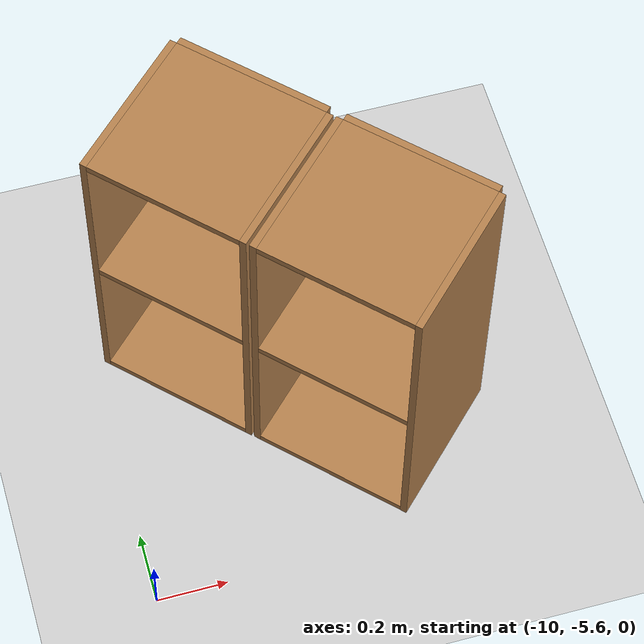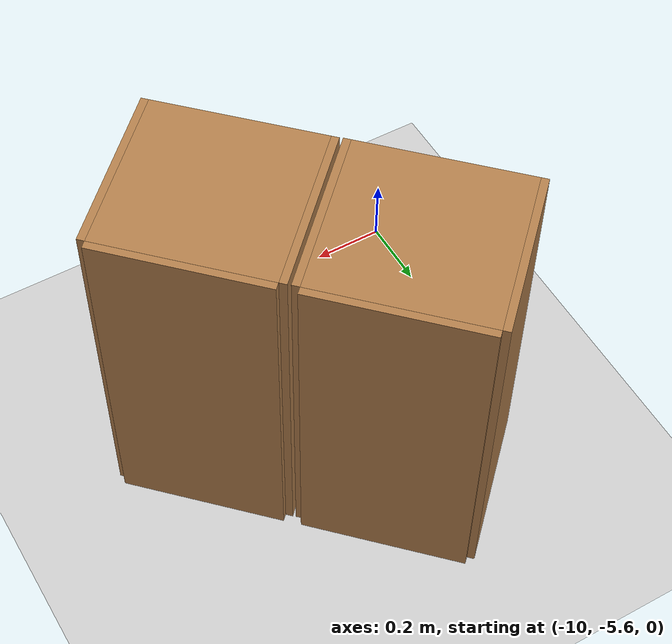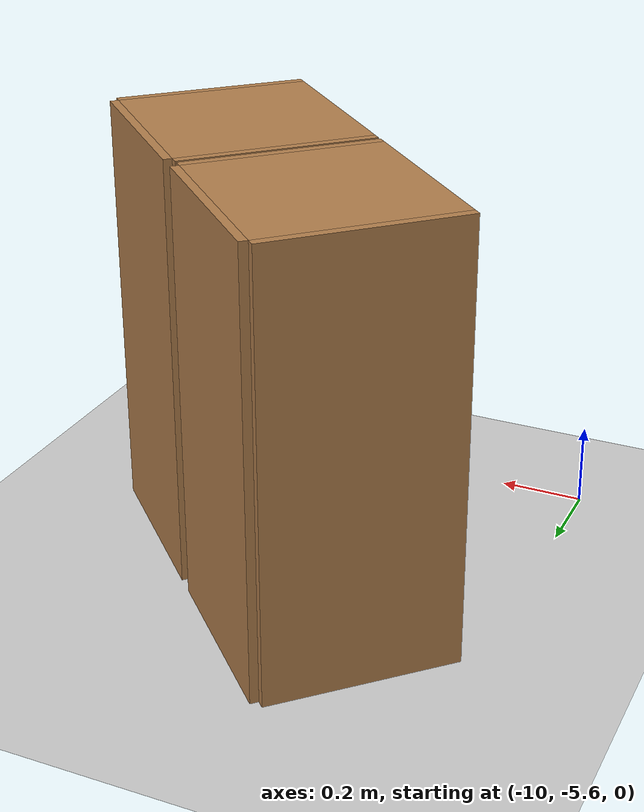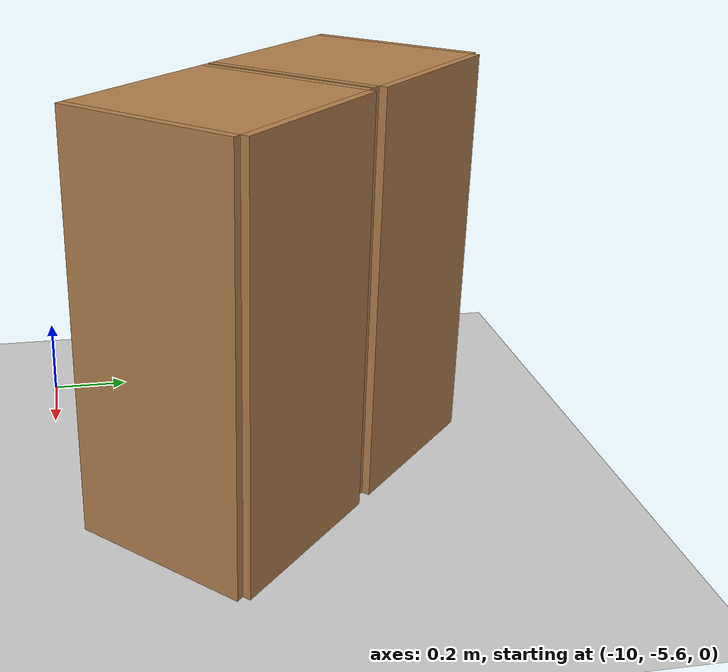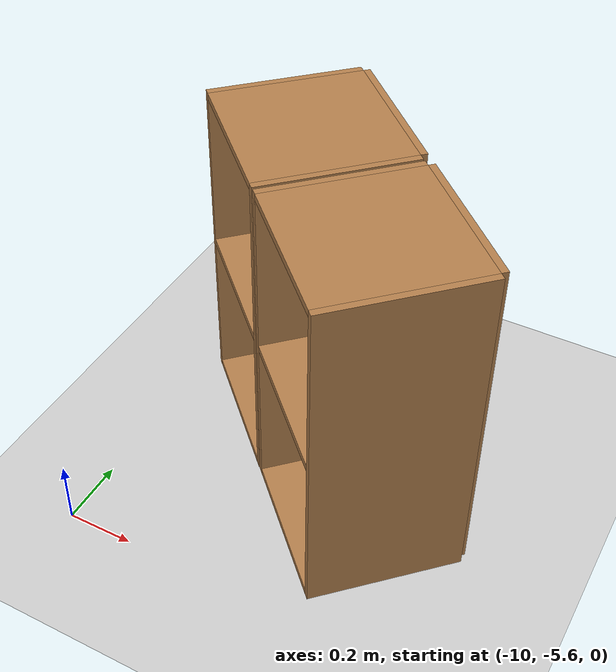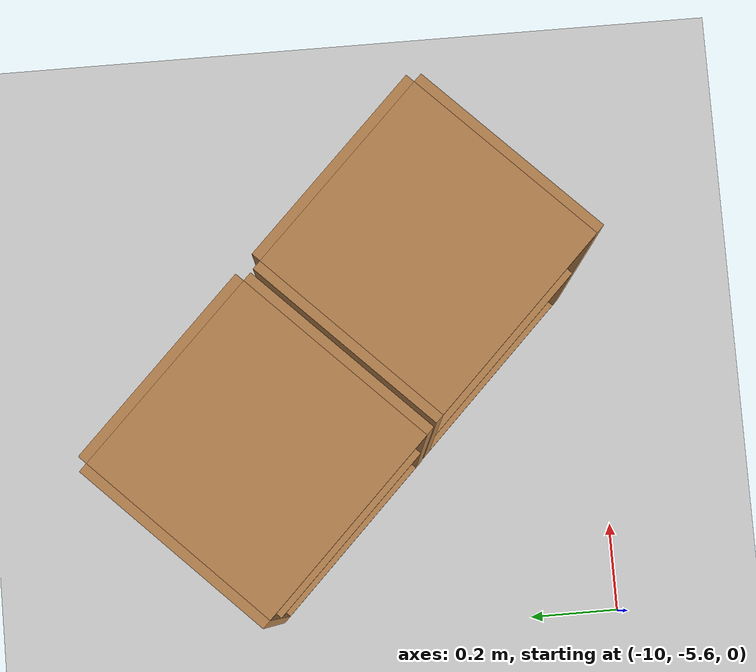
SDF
<sdf version="1.6">
 <world name="default">
  <model name="ground_plane">
   <static>1</static>
   <link name="link">
    <collision name="collision">
     <geometry><plane><normal>0 0 1</normal><size>100 100</size></plane></geometry>
     <surface><friction><ode><mu>100</mu><mu2>50</mu2></ode></friction></surface>
    </collision>
    <visual name="visual">
     <cast_shadows>0</cast_shadows>
     <geometry><plane><normal>0 0 1</normal><size>100 100</size></plane></geometry>
     <material>
      <script><uri>file://media/materials/scripts/gazebo.material</uri><name>Gazebo/Grey</name></script>
     </material>
    </visual>
   </link>
  </model>
  <model name="cabinet">
   <link name="cabinet_bottom_plate">
    <inertial>
     <pose>0 0 -1 0 -0 0</pose>
     <inertia><ixx>2.05</ixx><ixy>0</ixy><ixz>0</ixz><iyy>2.05</iyy><iyz>0</iyz><izz>2.05</izz></inertia>
     <mass>25</mass>
    </inertial>
    <pose>0.000907 -0.371908 0 0 -0 0.787259</pose>
    <visual name="cabinet_bottom_plate_geom_visual">
     <pose>0 0 0.01 0 -0 0</pose>
     <geometry><box><size>0.45 0.45 0.02</size></box></geometry>
     <material>
      <script><uri>file://media/materials/scripts/gazebo.material</uri><name>Gazebo/Wood</name></script>
      <shader type="vertex"><normal_map>__default__</normal_map></shader>
      <ambient>1 1 1 1</ambient>
      <diffuse>1 1 1 1</diffuse>
      <specular>0.2 0.2 0.2 1</specular>
      <emissive>0 0 0 1</emissive>
     </material>
    </visual>
    <visual name="cabinet_bottom_plate_geom_cabinet_back_plate_visual">
     <pose>0.235 0 0.51 0 -0 0</pose>
     <geometry><box><size>0.02 0.45 1.02</size></box></geometry>
     <material>
      <script><uri>file://media/materials/scripts/gazebo.material</uri><name>Gazebo/Wood</name></script>
      <shader type="vertex"><normal_map>__default__</normal_map></shader>
      <ambient>1 1 1 1</ambient>
      <diffuse>1 1 1 1</diffuse>
      <specular>0.2 0.2 0.2 1</specular>
      <emissive>0 0 0 1</emissive>
     </material>
    </visual>
    <visual name="cabinet_bottom_plate_geom_cabinet_left_plate_visual">
     <pose>0 0.235 0.51 0 -0 0</pose>
     <geometry><box><size>0.45 0.02 1.02</size></box></geometry>
     <material>
      <script><uri>file://media/materials/scripts/gazebo.material</uri><name>Gazebo/Wood</name></script>
      <shader type="vertex"><normal_map>__default__</normal_map></shader>
      <ambient>1 1 1 1</ambient>
      <diffuse>1 1 1 1</diffuse>
      <specular>0.2 0.2 0.2 1</specular>
      <emissive>0 0 0 1</emissive>
     </material>
    </visual>
    <visual name="cabinet_bottom_plate_geom_cabinet_middle_plate_visual">
     <pose>0 0 0.51 0 -0 0</pose>
     <geometry><box><size>0.45 0.45 0.02</size></box></geometry>
     <material>
      <script><uri>file://media/materials/scripts/gazebo.material</uri><name>Gazebo/Wood</name></script>
      <shader type="vertex"><normal_map>__default__</normal_map></shader>
      <ambient>1 1 1 1</ambient>
      <diffuse>1 1 1 1</diffuse>
      <specular>0.2 0.2 0.2 1</specular>
      <emissive>0 0 0 1</emissive>
     </material>
    </visual>
    <visual name="cabinet_bottom_plate_geom_cabinet_top_plate_visual">
     <pose>0 0 1.01 0 -0 0</pose>
     <geometry><box><size>0.45 0.45 0.02</size></box></geometry>
     <material>
      <script><uri>file://media/materials/scripts/gazebo.material</uri><name>Gazebo/Wood</name></script>
      <shader type="vertex"><normal_map>__default__</normal_map></shader>
      <ambient>1 1 1 1</ambient>
      <diffuse>1 1 1 1</diffuse>
      <specular>0.2 0.2 0.2 1</specular>
      <emissive>0 0 0 1</emissive>
     </material>
    </visual>
    <visual name="cabinet_bottom_plate_geom_cabinet_right_plate_visual">
     <pose>0 -0.235 0.51 0 -0 0</pose>
     <geometry><box><size>0.45 0.02 1.02</size></box></geometry>
     <material>
      <script><uri>file://media/materials/scripts/gazebo.material</uri><name>Gazebo/Wood</name></script>
      <shader type="vertex"><normal_map>__default__</normal_map></shader>
      <ambient>1 1 1 1</ambient>
      <diffuse>1 1 1 1</diffuse>
      <specular>0.2 0.2 0.2 1</specular>
      <emissive>0 0 0 1</emissive>
     </material>
    </visual>
    <collision name="cabinet_bottom_plate_geom">
     <pose>0 0 0.01 0 -0 0</pose>
     <geometry><box><size>0.45 0.45 0.02</size></box></geometry>
     <surface>
      <friction>
       <ode><mu>1</mu><mu2>1</mu2><fdir1>0 0 0</fdir1><slip1>0</slip1><slip2>0</slip2></ode>
       <torsional>
        <coefficient>1</coefficient>
        <patch_radius>0</patch_radius>
        <surface_radius>0</surface_radius>
        <use_patch_radius>1</use_patch_radius>
        <ode><slip>0</slip></ode>
       </torsional>
      </friction>
      <bounce><restitution_coefficient>0</restitution_coefficient><threshold>1e+06</threshold></bounce>
      <contact>
       <collide_without_contact>0</collide_without_contact>
       <collide_without_contact_bitmask>1</collide_without_contact_bitmask>
       <collide_bitmask>1</collide_bitmask>
       <ode>
        <soft_cfm>0</soft_cfm>
        <soft_erp>0.2</soft_erp>
        <kp>1e+13</kp>
        <kd>1</kd>
        <max_vel>0.01</max_vel>
        <min_depth>0</min_depth>
       </ode>
       <bullet>
        <split_impulse>1</split_impulse>
        <split_impulse_penetration_threshold>-0.01</split_impulse_penetration_threshold>
        <soft_cfm>0</soft_cfm>
        <soft_erp>0.2</soft_erp>
        <kp>1e+13</kp>
        <kd>1</kd>
       </bullet>
      </contact>
     </surface>
    </collision>
    <collision name="cabinet_bottom_plate_geom_cabinet_back_plate">
     <pose>0.235 0 0.51 0 -0 0</pose>
     <geometry><box><size>0.02 0.45 1.02</size></box></geometry>
     <surface>
      <friction>
       <ode><mu>1</mu><mu2>1</mu2><fdir1>0 0 0</fdir1><slip1>0</slip1><slip2>0</slip2></ode>
       <torsional>
        <coefficient>1</coefficient>
        <patch_radius>0</patch_radius>
        <surface_radius>0</surface_radius>
        <use_patch_radius>1</use_patch_radius>
        <ode><slip>0</slip></ode>
       </torsional>
      </friction>
      <bounce><restitution_coefficient>0</restitution_coefficient><threshold>1e+06</threshold></bounce>
      <contact>
       <collide_without_contact>0</collide_without_contact>
       <collide_without_contact_bitmask>1</collide_without_contact_bitmask>
       <collide_bitmask>1</collide_bitmask>
       <ode>
        <soft_cfm>0</soft_cfm>
        <soft_erp>0.2</soft_erp>
        <kp>1e+13</kp>
        <kd>1</kd>
        <max_vel>0.01</max_vel>
        <min_depth>0</min_depth>
       </ode>
       <bullet>
        <split_impulse>1</split_impulse>
        <split_impulse_penetration_threshold>-0.01</split_impulse_penetration_threshold>
        <soft_cfm>0</soft_cfm>
        <soft_erp>0.2</soft_erp>
        <kp>1e+13</kp>
        <kd>1</kd>
       </bullet>
      </contact>
     </surface>
    </collision>
    <collision name="cabinet_bottom_plate_geom_cabinet_left_plate">
     <pose>0 0.235 0.51 0 -0 0</pose>
     <geometry><box><size>0.45 0.02 1.02</size></box></geometry>
     <surface>
      <friction>
       <ode><mu>1</mu><mu2>1</mu2><fdir1>0 0 0</fdir1><slip1>0</slip1><slip2>0</slip2></ode>
       <torsional>
        <coefficient>1</coefficient>
        <patch_radius>0</patch_radius>
        <surface_radius>0</surface_radius>
        <use_patch_radius>1</use_patch_radius>
        <ode><slip>0</slip></ode>
       </torsional>
      </friction>
      <bounce><restitution_coefficient>0</restitution_coefficient><threshold>1e+06</threshold></bounce>
      <contact>
       <collide_without_contact>0</collide_without_contact>
       <collide_without_contact_bitmask>1</collide_without_contact_bitmask>
       <collide_bitmask>1</collide_bitmask>
       <ode>
        <soft_cfm>0</soft_cfm>
        <soft_erp>0.2</soft_erp>
        <kp>1e+13</kp>
        <kd>1</kd>
        <max_vel>0.01</max_vel>
        <min_depth>0</min_depth>
       </ode>
       <bullet>
        <split_impulse>1</split_impulse>
        <split_impulse_penetration_threshold>-0.01</split_impulse_penetration_threshold>
        <soft_cfm>0</soft_cfm>
        <soft_erp>0.2</soft_erp>
        <kp>1e+13</kp>
        <kd>1</kd>
       </bullet>
      </contact>
     </surface>
    </collision>
    <collision name="cabinet_bottom_plate_geom_cabinet_middle_plate">
     <pose>0 0 0.51 0 -0 0</pose>
     <geometry><box><size>0.45 0.45 0.02</size></box></geometry>
     <surface>
      <friction>
       <ode><mu>1</mu><mu2>1</mu2><fdir1>0 0 0</fdir1><slip1>0</slip1><slip2>0</slip2></ode>
       <torsional>
        <coefficient>1</coefficient>
        <patch_radius>0</patch_radius>
        <surface_radius>0</surface_radius>
        <use_patch_radius>1</use_patch_radius>
        <ode><slip>0</slip></ode>
       </torsional>
      </friction>
      <bounce><restitution_coefficient>0</restitution_coefficient><threshold>1e+06</threshold></bounce>
      <contact>
       <collide_without_contact>0</collide_without_contact>
       <collide_without_contact_bitmask>1</collide_without_contact_bitmask>
       <collide_bitmask>1</collide_bitmask>
       <ode>
        <soft_cfm>0</soft_cfm>
        <soft_erp>0.2</soft_erp>
        <kp>1e+13</kp>
        <kd>1</kd>
        <max_vel>0.01</max_vel>
        <min_depth>0</min_depth>
       </ode>
       <bullet>
        <split_impulse>1</split_impulse>
        <split_impulse_penetration_threshold>-0.01</split_impulse_penetration_threshold>
        <soft_cfm>0</soft_cfm>
        <soft_erp>0.2</soft_erp>
        <kp>1e+13</kp>
        <kd>1</kd>
       </bullet>
      </contact>
     </surface>
    </collision>
    <collision name="cabinet_bottom_plate_geom_cabinet_right_plate">
     <pose>0 -0.235 0.51 0 -0 0</pose>
     <geometry><box><size>0.45 0.02 1.02</size></box></geometry>
     <surface>
      <friction>
       <ode><mu>1</mu><mu2>1</mu2><fdir1>0 0 0</fdir1><slip1>0</slip1><slip2>0</slip2></ode>
       <torsional>
        <coefficient>1</coefficient>
        <patch_radius>0</patch_radius>
        <surface_radius>0</surface_radius>
        <use_patch_radius>1</use_patch_radius>
        <ode><slip>0</slip></ode>
       </torsional>
      </friction>
      <bounce><restitution_coefficient>0</restitution_coefficient><threshold>1e+06</threshold></bounce>
      <contact>
       <collide_without_contact>0</collide_without_contact>
       <collide_without_contact_bitmask>1</collide_without_contact_bitmask>
       <collide_bitmask>1</collide_bitmask>
       <ode>
        <soft_cfm>0</soft_cfm>
        <soft_erp>0.2</soft_erp>
        <kp>1e+13</kp>
        <kd>1</kd>
        <max_vel>0.01</max_vel>
        <min_depth>0</min_depth>
       </ode>
       <bullet>
        <split_impulse>1</split_impulse>
        <split_impulse_penetration_threshold>-0.01</split_impulse_penetration_threshold>
        <soft_cfm>0</soft_cfm>
        <soft_erp>0.2</soft_erp>
        <kp>1e+13</kp>
        <kd>1</kd>
       </bullet>
      </contact>
     </surface>
    </collision>
    <collision name="cabinet_bottom_plate_geom_cabinet_top_plate">
     <pose>0 0 1.01 0 -0 0</pose>
     <geometry><box><size>0.45 0.45 0.02</size></box></geometry>
     <surface>
      <friction>
       <ode><mu>1</mu><mu2>1</mu2><fdir1>0 0 0</fdir1><slip1>0</slip1><slip2>0</slip2></ode>
       <torsional>
        <coefficient>1</coefficient>
        <patch_radius>0</patch_radius>
        <surface_radius>0</surface_radius>
        <use_patch_radius>1</use_patch_radius>
        <ode><slip>0</slip></ode>
       </torsional>
      </friction>
      <bounce><restitution_coefficient>0</restitution_coefficient><threshold>1e+06</threshold></bounce>
      <contact>
       <collide_without_contact>0</collide_without_contact>
       <collide_without_contact_bitmask>1</collide_without_contact_bitmask>
       <collide_bitmask>1</collide_bitmask>
       <ode>
        <soft_cfm>0</soft_cfm>
        <soft_erp>0.2</soft_erp>
        <kp>1e+13</kp>
        <kd>1</kd>
        <max_vel>0.01</max_vel>
        <min_depth>0</min_depth>
       </ode>
       <bullet>
        <split_impulse>1</split_impulse>
        <split_impulse_penetration_threshold>-0.01</split_impulse_penetration_threshold>
        <soft_cfm>0</soft_cfm>
        <soft_erp>0.2</soft_erp>
        <kp>1e+13</kp>
        <kd>1</kd>
       </bullet>
      </contact>
     </surface>
    </collision>
   </link>
   <link name="cabinet_bottom_plate_clone">
    <inertial>
     <pose>0 0 -1 0 -0 0</pose>
     <inertia><ixx>2.05</ixx><ixy>0</ixy><ixz>0</ixz><iyy>2.05</iyy><iyz>0</iyz><izz>2.05</izz></inertia>
     <mass>25</mass>
    </inertial>
    <pose>0.354605 -0.722723 0 0 -0 0.787259</pose>
    <visual name="cabinet_bottom_plate_geom_visual">
     <pose>0 0 0.01 0 -0 0</pose>
     <geometry><box><size>0.45 0.45 0.02</size></box></geometry>
     <material>
      <script><uri>file://media/materials/scripts/gazebo.material</uri><name>Gazebo/Wood</name></script>
      <shader type="vertex"><normal_map>__default__</normal_map></shader>
      <ambient>1 1 1 1</ambient>
      <diffuse>1 1 1 1</diffuse>
      <specular>0.2 0.2 0.2 1</specular>
      <emissive>0 0 0 1</emissive>
     </material>
    </visual>
    <visual name="cabinet_bottom_plate_geom_cabinet_back_plate_visual">
     <pose>0.235 0 0.51 0 -0 0</pose>
     <geometry><box><size>0.02 0.45 1.02</size></box></geometry>
     <material>
      <script><uri>file://media/materials/scripts/gazebo.material</uri><name>Gazebo/Wood</name></script>
      <shader type="vertex"><normal_map>__default__</normal_map></shader>
      <ambient>1 1 1 1</ambient>
      <diffuse>1 1 1 1</diffuse>
      <specular>0.2 0.2 0.2 1</specular>
      <emissive>0 0 0 1</emissive>
     </material>
    </visual>
    <visual name="cabinet_bottom_plate_geom_cabinet_left_plate_visual">
     <pose>0 0.235 0.51 0 -0 0</pose>
     <geometry><box><size>0.45 0.02 1.02</size></box></geometry>
     <material>
      <script><uri>file://media/materials/scripts/gazebo.material</uri><name>Gazebo/Wood</name></script>
      <shader type="vertex"><normal_map>__default__</normal_map></shader>
      <ambient>1 1 1 1</ambient>
      <diffuse>1 1 1 1</diffuse>
      <specular>0.2 0.2 0.2 1</specular>
      <emissive>0 0 0 1</emissive>
     </material>
    </visual>
    <visual name="cabinet_bottom_plate_geom_cabinet_top_plate_visual">
     <pose>0 0 1.01 0 -0 0</pose>
     <geometry><box><size>0.45 0.45 0.02</size></box></geometry>
     <material>
      <script><uri>file://media/materials/scripts/gazebo.material</uri><name>Gazebo/Wood</name></script>
      <shader type="vertex"><normal_map>__default__</normal_map></shader>
      <ambient>1 1 1 1</ambient>
      <diffuse>1 1 1 1</diffuse>
      <specular>0.2 0.2 0.2 1</specular>
      <emissive>0 0 0 1</emissive>
     </material>
    </visual>
    <visual name="cabinet_bottom_plate_geom_cabinet_middle_plate_visual">
     <pose>0 0 0.51 0 -0 0</pose>
     <geometry><box><size>0.45 0.45 0.02</size></box></geometry>
     <material>
      <script><uri>file://media/materials/scripts/gazebo.material</uri><name>Gazebo/Wood</name></script>
      <shader type="vertex"><normal_map>__default__</normal_map></shader>
      <ambient>1 1 1 1</ambient>
      <diffuse>1 1 1 1</diffuse>
      <specular>0.2 0.2 0.2 1</specular>
      <emissive>0 0 0 1</emissive>
     </material>
    </visual>
    <visual name="cabinet_bottom_plate_geom_cabinet_right_plate_visual">
     <pose>0 -0.235 0.51 0 -0 0</pose>
     <geometry><box><size>0.45 0.02 1.02</size></box></geometry>
     <material>
      <script><uri>file://media/materials/scripts/gazebo.material</uri><name>Gazebo/Wood</name></script>
      <shader type="vertex"><normal_map>__default__</normal_map></shader>
      <ambient>1 1 1 1</ambient>
      <diffuse>1 1 1 1</diffuse>
      <specular>0.2 0.2 0.2 1</specular>
      <emissive>0 0 0 1</emissive>
     </material>
    </visual>
    <collision name="cabinet_bottom_plate_geom_cabinet_left_plate">
     <pose>0 0.235 0.51 0 -0 0</pose>
     <geometry><box><size>0.45 0.02 1.02</size></box></geometry>
     <surface>
      <friction>
       <ode><mu>1</mu><mu2>1</mu2><fdir1>0 0 0</fdir1><slip1>0</slip1><slip2>0</slip2></ode>
       <torsional>
        <coefficient>1</coefficient>
        <patch_radius>0</patch_radius>
        <surface_radius>0</surface_radius>
        <use_patch_radius>1</use_patch_radius>
        <ode><slip>0</slip></ode>
       </torsional>
      </friction>
      <bounce><restitution_coefficient>0</restitution_coefficient><threshold>1e+06</threshold></bounce>
      <contact>
       <collide_without_contact>0</collide_without_contact>
       <collide_without_contact_bitmask>1</collide_without_contact_bitmask>
       <collide_bitmask>1</collide_bitmask>
       <ode>
        <soft_cfm>0</soft_cfm>
        <soft_erp>0.2</soft_erp>
        <kp>1e+13</kp>
        <kd>1</kd>
        <max_vel>0.01</max_vel>
        <min_depth>0</min_depth>
       </ode>
       <bullet>
        <split_impulse>1</split_impulse>
        <split_impulse_penetration_threshold>-0.01</split_impulse_penetration_threshold>
        <soft_cfm>0</soft_cfm>
        <soft_erp>0.2</soft_erp>
        <kp>1e+13</kp>
        <kd>1</kd>
       </bullet>
      </contact>
     </surface>
    </collision>
    <collision name="cabinet_bottom_plate_geom_cabinet_middle_plate">
     <pose>0 0 0.51 0 -0 0</pose>
     <geometry><box><size>0.45 0.45 0.02</size></box></geometry>
     <surface>
      <friction>
       <ode><mu>1</mu><mu2>1</mu2><fdir1>0 0 0</fdir1><slip1>0</slip1><slip2>0</slip2></ode>
       <torsional>
        <coefficient>1</coefficient>
        <patch_radius>0</patch_radius>
        <surface_radius>0</surface_radius>
        <use_patch_radius>1</use_patch_radius>
        <ode><slip>0</slip></ode>
       </torsional>
      </friction>
      <bounce><restitution_coefficient>0</restitution_coefficient><threshold>1e+06</threshold></bounce>
      <contact>
       <collide_without_contact>0</collide_without_contact>
       <collide_without_contact_bitmask>1</collide_without_contact_bitmask>
       <collide_bitmask>1</collide_bitmask>
       <ode>
        <soft_cfm>0</soft_cfm>
        <soft_erp>0.2</soft_erp>
        <kp>1e+13</kp>
        <kd>1</kd>
        <max_vel>0.01</max_vel>
        <min_depth>0</min_depth>
       </ode>
       <bullet>
        <split_impulse>1</split_impulse>
        <split_impulse_penetration_threshold>-0.01</split_impulse_penetration_threshold>
        <soft_cfm>0</soft_cfm>
        <soft_erp>0.2</soft_erp>
        <kp>1e+13</kp>
        <kd>1</kd>
       </bullet>
      </contact>
     </surface>
    </collision>
    <collision name="cabinet_bottom_plate_geom_cabinet_top_plate">
     <pose>0 0 1.01 0 -0 0</pose>
     <geometry><box><size>0.45 0.45 0.02</size></box></geometry>
     <surface>
      <friction>
       <ode><mu>1</mu><mu2>1</mu2><fdir1>0 0 0</fdir1><slip1>0</slip1><slip2>0</slip2></ode>
       <torsional>
        <coefficient>1</coefficient>
        <patch_radius>0</patch_radius>
        <surface_radius>0</surface_radius>
        <use_patch_radius>1</use_patch_radius>
        <ode><slip>0</slip></ode>
       </torsional>
      </friction>
      <bounce><restitution_coefficient>0</restitution_coefficient><threshold>1e+06</threshold></bounce>
      <contact>
       <collide_without_contact>0</collide_without_contact>
       <collide_without_contact_bitmask>1</collide_without_contact_bitmask>
       <collide_bitmask>1</collide_bitmask>
       <ode>
        <soft_cfm>0</soft_cfm>
        <soft_erp>0.2</soft_erp>
        <kp>1e+13</kp>
        <kd>1</kd>
        <max_vel>0.01</max_vel>
        <min_depth>0</min_depth>
       </ode>
       <bullet>
        <split_impulse>1</split_impulse>
        <split_impulse_penetration_threshold>-0.01</split_impulse_penetration_threshold>
        <soft_cfm>0</soft_cfm>
        <soft_erp>0.2</soft_erp>
        <kp>1e+13</kp>
        <kd>1</kd>
       </bullet>
      </contact>
     </surface>
    </collision>
    <collision name="cabinet_bottom_plate_geom">
     <pose>0 0 0.01 0 -0 0</pose>
     <geometry><box><size>0.45 0.45 0.02</size></box></geometry>
     <surface>
      <friction>
       <ode><mu>1</mu><mu2>1</mu2><fdir1>0 0 0</fdir1><slip1>0</slip1><slip2>0</slip2></ode>
       <torsional>
        <coefficient>1</coefficient>
        <patch_radius>0</patch_radius>
        <surface_radius>0</surface_radius>
        <use_patch_radius>1</use_patch_radius>
        <ode><slip>0</slip></ode>
       </torsional>
      </friction>
      <bounce><restitution_coefficient>0</restitution_coefficient><threshold>1e+06</threshold></bounce>
      <contact>
       <collide_without_contact>0</collide_without_contact>
       <collide_without_contact_bitmask>1</collide_without_contact_bitmask>
       <collide_bitmask>1</collide_bitmask>
       <ode>
        <soft_cfm>0</soft_cfm>
        <soft_erp>0.2</soft_erp>
        <kp>1e+13</kp>
        <kd>1</kd>
        <max_vel>0.01</max_vel>
        <min_depth>0</min_depth>
       </ode>
       <bullet>
        <split_impulse>1</split_impulse>
        <split_impulse_penetration_threshold>-0.01</split_impulse_penetration_threshold>
        <soft_cfm>0</soft_cfm>
        <soft_erp>0.2</soft_erp>
        <kp>1e+13</kp>
        <kd>1</kd>
       </bullet>
      </contact>
     </surface>
    </collision>
    <collision name="cabinet_bottom_plate_geom_cabinet_back_plate">
     <pose>0.235 0 0.51 0 -0 0</pose>
     <geometry><box><size>0.02 0.45 1.02</size></box></geometry>
     <surface>
      <friction>
       <ode><mu>1</mu><mu2>1</mu2><fdir1>0 0 0</fdir1><slip1>0</slip1><slip2>0</slip2></ode>
       <torsional>
        <coefficient>1</coefficient>
        <patch_radius>0</patch_radius>
        <surface_radius>0</surface_radius>
        <use_patch_radius>1</use_patch_radius>
        <ode><slip>0</slip></ode>
       </torsional>
      </friction>
      <bounce><restitution_coefficient>0</restitution_coefficient><threshold>1e+06</threshold></bounce>
      <contact>
       <collide_without_contact>0</collide_without_contact>
       <collide_without_contact_bitmask>1</collide_without_contact_bitmask>
       <collide_bitmask>1</collide_bitmask>
       <ode>
        <soft_cfm>0</soft_cfm>
        <soft_erp>0.2</soft_erp>
        <kp>1e+13</kp>
        <kd>1</kd>
        <max_vel>0.01</max_vel>
        <min_depth>0</min_depth>
       </ode>
       <bullet>
        <split_impulse>1</split_impulse>
        <split_impulse_penetration_threshold>-0.01</split_impulse_penetration_threshold>
        <soft_cfm>0</soft_cfm>
        <soft_erp>0.2</soft_erp>
        <kp>1e+13</kp>
        <kd>1</kd>
       </bullet>
      </contact>
     </surface>
    </collision>
    <collision name="cabinet_bottom_plate_geom_cabinet_right_plate">
     <pose>0 -0.235 0.51 0 -0 0</pose>
     <geometry><box><size>0.45 0.02 1.02</size></box></geometry>
     <surface>
      <friction>
       <ode><mu>1</mu><mu2>1</mu2><fdir1>0 0 0</fdir1><slip1>0</slip1><slip2>0</slip2></ode>
       <torsional>
        <coefficient>1</coefficient>
        <patch_radius>0</patch_radius>
        <surface_radius>0</surface_radius>
        <use_patch_radius>1</use_patch_radius>
        <ode><slip>0</slip></ode>
       </torsional>
      </friction>
      <bounce><restitution_coefficient>0</restitution_coefficient><threshold>1e+06</threshold></bounce>
      <contact>
       <collide_without_contact>0</collide_without_contact>
       <collide_without_contact_bitmask>1</collide_without_contact_bitmask>
       <collide_bitmask>1</collide_bitmask>
       <ode>
        <soft_cfm>0</soft_cfm>
        <soft_erp>0.2</soft_erp>
        <kp>1e+13</kp>
        <kd>1</kd>
        <max_vel>0.01</max_vel>
        <min_depth>0</min_depth>
       </ode>
       <bullet>
        <split_impulse>1</split_impulse>
        <split_impulse_penetration_threshold>-0.01</split_impulse_penetration_threshold>
        <soft_cfm>0</soft_cfm>
        <soft_erp>0.2</soft_erp>
        <kp>1e+13</kp>
        <kd>1</kd>
       </bullet>
      </contact>
     </surface>
    </collision>
   </link>
   <static>1</static>
   <pose>-9.63478 -4.47159 0 0 -0 0</pose>
  </model>
 </world>
</sdf>
